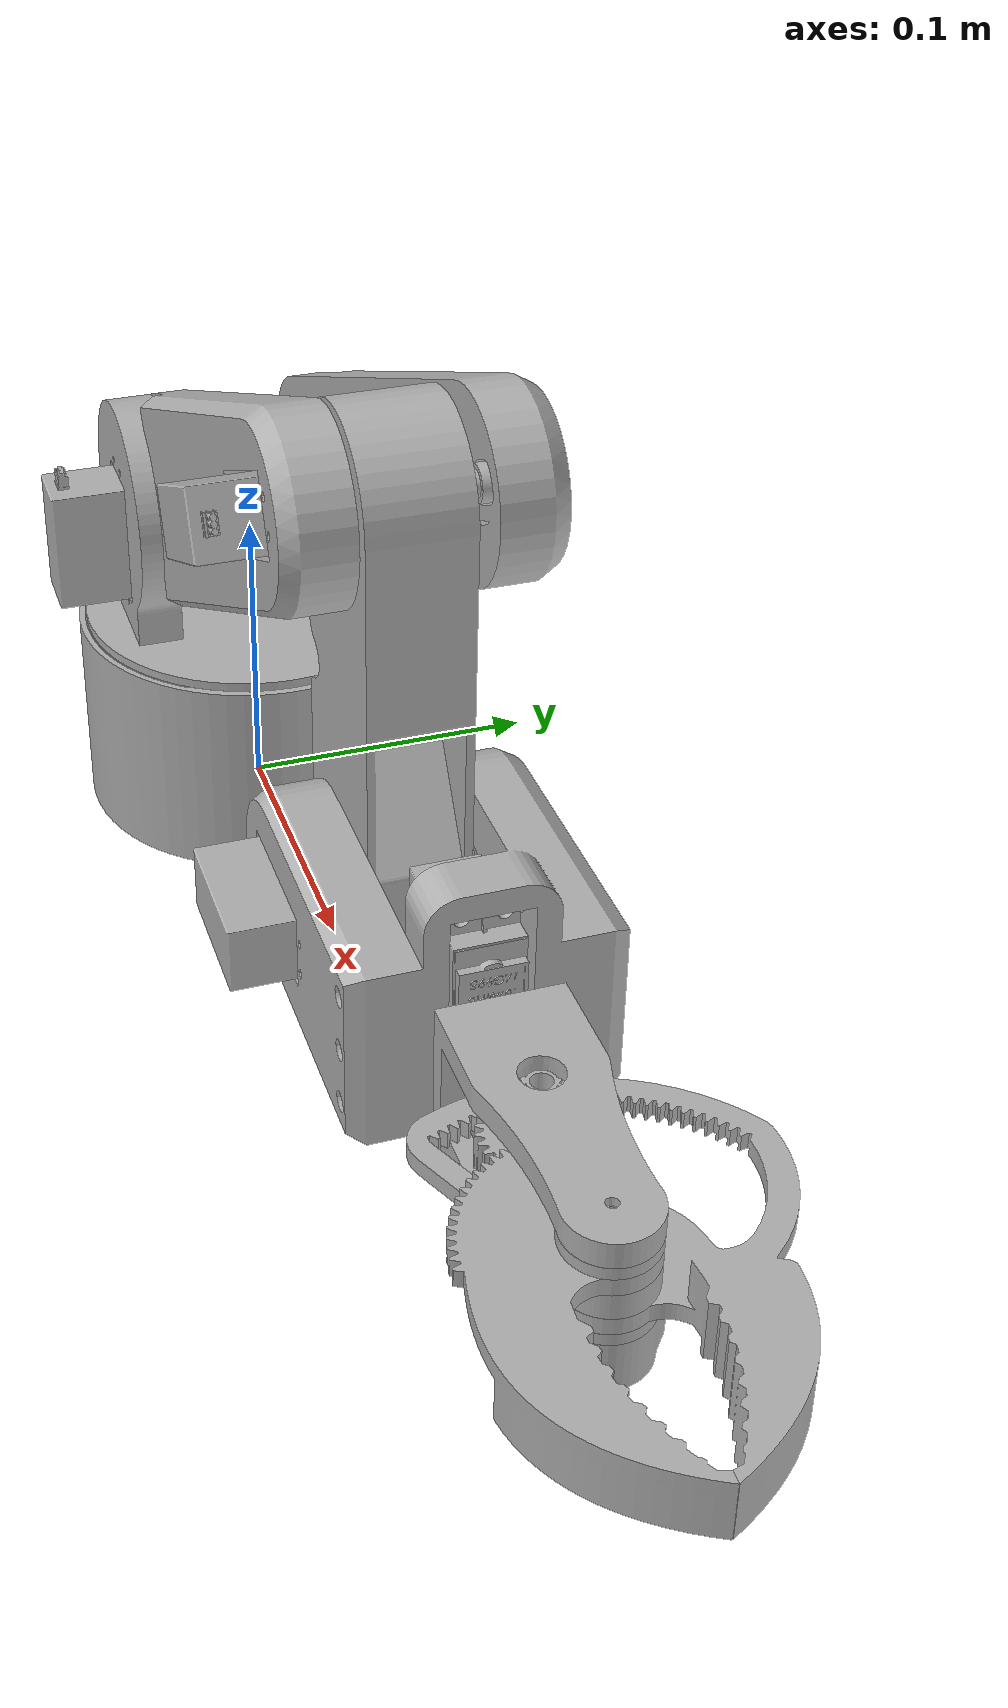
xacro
<?xml version="1.0" ?>
<robot name="braco" xmlns:xacro="http://www.ros.org/wiki/xacro">

<xacro:include filename="$(find braco_description)/urdf/materials.xacro" />
<xacro:include filename="$(find braco_description)/urdf/braco.trans" />
<xacro:include filename="$(find braco_description)/urdf/braco.gazebo" />
<link name="base_link">
  <inertial>
    <origin rpy="0 0 0" xyz="1.7530925309878173e-17 -4.54861709507948e-18 0.02187352138307566"/>
    <mass value="0.08783440670094944"/>
    <inertia ixx="0.000167" ixy="0.0" ixz="-0.0" iyy="0.000167" iyz="0.0" izz="0.000245"/>
  </inertial>
  <visual>
    <origin rpy="0 0 0" xyz="0 0 0"/>
    <geometry>
      <mesh filename="package://braco_description/meshes/base_link.stl" scale="0.001 0.001 0.001"/>
    </geometry>
    <material name="silver"/>
  </visual>
  <collision>
    <origin rpy="0 0 0" xyz="0 0 0"/>
    <geometry>
      <mesh filename="package://braco_description/meshes/base_link.stl" scale="0.001 0.001 0.001"/>
    </geometry>
  </collision>
</link>

<link name="servo_right_1">
  <inertial>
    <origin rpy="0 0 0" xyz="0.06544272704404532 -0.14216641850044148 0.07250492782702281"/>
    <mass value="0.25257832542625036"/>
    <inertia ixx="6.8e-05" ixy="-0.0" ixz="-0.0" iyy="4.4e-05" iyz="-1e-06" izz="4.1e-05"/>
  </inertial>
  <visual>
    <origin rpy="0 0 0" xyz="0.064 -0.093939 -0.032689"/>
    <geometry>
      <mesh filename="package://braco_description/meshes/servo_right_1.stl" scale="0.001 0.001 0.001"/>
    </geometry>
    <material name="silver"/>
  </visual>
  <collision>
    <origin rpy="0 0 0" xyz="0.064 -0.093939 -0.032689"/>
    <geometry>
      <mesh filename="package://braco_description/meshes/servo_right_1.stl" scale="0.001 0.001 0.001"/>
    </geometry>
  </collision>
</link>

<link name="Center_arm_v1_1">
  <inertial>
    <origin rpy="0 0 0" xyz="-0.0007068682064791942 0.009887184158139134 -0.05780205339226316"/>
    <mass value="0.24743903954578314"/>
    <inertia ixx="0.000566" ixy="0.0" ixz="-5e-06" iyy="0.000605" iyz="-0.0" izz="7.6e-05"/>
  </inertial>
  <visual>
    <origin rpy="0 0 0" xyz="-0.168543 0.011691 -0.194405"/>
    <geometry>
      <mesh filename="package://braco_description/meshes/Center_arm_v1_1.stl" scale="0.001 0.001 0.001"/>
    </geometry>
    <material name="silver"/>
  </visual>
  <collision>
    <origin rpy="0 0 0" xyz="-0.168543 0.011691 -0.194405"/>
    <geometry>
      <mesh filename="package://braco_description/meshes/Center_arm_v1_1.stl" scale="0.001 0.001 0.001"/>
    </geometry>
  </collision>
</link>

<link name="Center_arm_bearing_guide_v1_1">
  <inertial>
    <origin rpy="0 0 0" xyz="-0.008485716956284667 0.003221962356881842 0.008485254227916045"/>
    <mass value="0.0033035453927957375"/>
    <inertia ixx="0.0" ixy="-0.0" ixz="0.0" iyy="0.0" iyz="-0.0" izz="0.0"/>
  </inertial>
  <visual>
    <origin rpy="0 0 0" xyz="-0.177029 -0.008309 -0.18592"/>
    <geometry>
      <mesh filename="package://braco_description/meshes/Center_arm_bearing_guide_v1_1.stl" scale="0.001 0.001 0.001"/>
    </geometry>
    <material name="silver"/>
  </visual>
  <collision>
    <origin rpy="0 0 0" xyz="-0.177029 -0.008309 -0.18592"/>
    <geometry>
      <mesh filename="package://braco_description/meshes/Center_arm_bearing_guide_v1_1.stl" scale="0.001 0.001 0.001"/>
    </geometry>
  </collision>
</link>

<link name="Center_arm_bearing_guide_v1__1__1">
  <inertial>
    <origin rpy="0 0 0" xyz="-0.008485716956255163 0.003221962356880064 -0.008485745772046652"/>
    <mass value="0.0033035453927957375"/>
    <inertia ixx="0.0" ixy="0.0" ixz="-0.0" iyy="0.0" iyz="0.0" izz="0.0"/>
  </inertial>
  <visual>
    <origin rpy="0 0 0" xyz="-0.177029 -0.008309 -0.085391"/>
    <geometry>
      <mesh filename="package://braco_description/meshes/Center_arm_bearing_guide_v1__1__1.stl" scale="0.001 0.001 0.001"/>
    </geometry>
    <material name="silver"/>
  </visual>
  <collision>
    <origin rpy="0 0 0" xyz="-0.177029 -0.008309 -0.085391"/>
    <geometry>
      <mesh filename="package://braco_description/meshes/Center_arm_bearing_guide_v1__1__1.stl" scale="0.001 0.001 0.001"/>
    </geometry>
  </collision>
</link>

<link name="Center_arm_bearing_guide_clamp_v1_1">
  <inertial>
    <origin rpy="0 0 0" xyz="2.8304380533805684e-07 0.0016578450305459944 2.542279528283675e-07"/>
    <mass value="0.00026744770959091237"/>
    <inertia ixx="0.0" ixy="-0.0" ixz="0.0" iyy="0.0" iyz="0.0" izz="0.0"/>
  </inertial>
  <visual>
    <origin rpy="0 0 0" xyz="-0.168543 -0.021709 -0.194405"/>
    <geometry>
      <mesh filename="package://braco_description/meshes/Center_arm_bearing_guide_clamp_v1_1.stl" scale="0.001 0.001 0.001"/>
    </geometry>
    <material name="silver"/>
  </visual>
  <collision>
    <origin rpy="0 0 0" xyz="-0.168543 -0.021709 -0.194405"/>
    <geometry>
      <mesh filename="package://braco_description/meshes/Center_arm_bearing_guide_clamp_v1_1.stl" scale="0.001 0.001 0.001"/>
    </geometry>
  </collision>
</link>

<link name="ombro_1">
  <inertial>
    <origin rpy="0 0 0" xyz="0.08425500605814484 0.024406441382175036 0.039929756958307056"/>
    <mass value="0.488316525379642"/>
    <inertia ixx="0.000841" ixy="-3.4e-05" ixz="-0.000637" iyy="0.001965" iyz="-1.6e-05" izz="0.001884"/>
  </inertial>
  <visual>
    <origin rpy="0 0 0" xyz="-0.001443 0.023001 -0.11517"/>
    <geometry>
      <mesh filename="package://braco_description/meshes/ombro_1.stl" scale="0.001 0.001 0.001"/>
    </geometry>
    <material name="silver"/>
  </visual>
  <collision>
    <origin rpy="0 0 0" xyz="-0.001443 0.023001 -0.11517"/>
    <geometry>
      <mesh filename="package://braco_description/meshes/ombro_1.stl" scale="0.001 0.001 0.001"/>
    </geometry>
  </collision>
</link>

<link name="servo_elbow_1">
  <inertial>
    <origin rpy="0 0 0" xyz="0.11594994326799538 0.20794860786324101 -0.05484182605242849"/>
    <mass value="0.2525786066068201"/>
    <inertia ixx="4.6e-05" ixy="-0.0" ixz="-1.1e-05" iyy="4.4e-05" iyz="-0.0" izz="6.3e-05"/>
  </inertial>
  <visual>
    <origin rpy="0 0 0" xyz="-0.043552 0.244866 -0.245031"/>
    <geometry>
      <mesh filename="package://braco_description/meshes/servo_elbow_1.stl" scale="0.001 0.001 0.001"/>
    </geometry>
    <material name="silver"/>
  </visual>
  <collision>
    <origin rpy="0 0 0" xyz="-0.043552 0.244866 -0.245031"/>
    <geometry>
      <mesh filename="package://braco_description/meshes/servo_elbow_1.stl" scale="0.001 0.001 0.001"/>
    </geometry>
  </collision>
</link>

<link name="servo_punho_rot_1">
  <inertial>
    <origin rpy="0 0 0" xyz="0.12479196273098876 -0.10986496796742719 -0.2166544630735875"/>
    <mass value="0.25257832542625036"/>
    <inertia ixx="4.4e-05" ixy="-0.0" ixz="1e-06" iyy="6.8e-05" iyz="0.0" izz="4.1e-05"/>
  </inertial>
  <visual>
    <origin rpy="0 0 0" xyz="-0.105174 -0.110262 -0.30322"/>
    <geometry>
      <mesh filename="package://braco_description/meshes/servo_punho_rot_1.stl" scale="0.001 0.001 0.001"/>
    </geometry>
    <material name="silver"/>
  </visual>
  <collision>
    <origin rpy="0 0 0" xyz="-0.105174 -0.110262 -0.30322"/>
    <geometry>
      <mesh filename="package://braco_description/meshes/servo_punho_rot_1.stl" scale="0.001 0.001 0.001"/>
    </geometry>
  </collision>
</link>

<link name="servo_punho_xy_1">
  <inertial>
    <origin rpy="0 0 0" xyz="0.009976323814758825 -0.025226418500438767 2.8228800974527957e-07"/>
    <mass value="0.25257832542625036"/>
    <inertia ixx="4.1e-05" ixy="1e-06" ixz="0.0" iyy="4.4e-05" iyz="-0.0" izz="6.8e-05"/>
  </inertial>
  <visual>
    <origin rpy="0 0 0" xyz="-0.168543 0.011691 -0.076905"/>
    <geometry>
      <mesh filename="package://braco_description/meshes/servo_punho_xy_1.stl" scale="0.001 0.001 0.001"/>
    </geometry>
    <material name="silver"/>
  </visual>
  <collision>
    <origin rpy="0 0 0" xyz="-0.168543 0.011691 -0.076905"/>
    <geometry>
      <mesh filename="package://braco_description/meshes/servo_punho_xy_1.stl" scale="0.001 0.001 0.001"/>
    </geometry>
  </collision>
</link>

<link name="punho_1">
  <inertial>
    <origin rpy="0 0 0" xyz="-0.12859312744504028 0.10517389824420881 0.02895937574638175"/>
    <mass value="0.21880690583277723"/>
    <inertia ixx="0.000235" ixy="1.1e-05" ixz="-7e-06" iyy="0.000273" iyz="0.0" izz="0.000371"/>
  </inertial>
  <visual>
    <origin rpy="0 0 0" xyz="-0.333684 0.102528 -0.048905"/>
    <geometry>
      <mesh filename="package://braco_description/meshes/punho_1.stl" scale="0.001 0.001 0.001"/>
    </geometry>
    <material name="silver"/>
  </visual>
  <collision>
    <origin rpy="0 0 0" xyz="-0.333684 0.102528 -0.048905"/>
    <geometry>
      <mesh filename="package://braco_description/meshes/punho_1.stl" scale="0.001 0.001 0.001"/>
    </geometry>
  </collision>
</link>

<link name="Center_arm_bearing_guide_clamp_v1_punho_1">
  <inertial>
    <origin rpy="0 0 0" xyz="2.8304370869314255e-07 0.0016578450305454705 2.542280483353032e-07"/>
    <mass value="0.00026744770959091237"/>
    <inertia ixx="0.0" ixy="0.0" ixz="0.0" iyy="0.0" iyz="-0.0" izz="0.0"/>
  </inertial>
  <visual>
    <origin rpy="0 0 0" xyz="-0.168543 -0.021709 -0.076905"/>
    <geometry>
      <mesh filename="package://braco_description/meshes/Center_arm_bearing_guide_clamp_v1_punho_1.stl" scale="0.001 0.001 0.001"/>
    </geometry>
    <material name="silver"/>
  </visual>
  <collision>
    <origin rpy="0 0 0" xyz="-0.168543 -0.021709 -0.076905"/>
    <geometry>
      <mesh filename="package://braco_description/meshes/Center_arm_bearing_guide_clamp_v1_punho_1.stl" scale="0.001 0.001 0.001"/>
    </geometry>
  </collision>
</link>

<link name="Base_servo_mount_right_v1_1">
  <inertial>
    <origin rpy="0 0 0" xyz="-0.015875047506617307 -0.00020585580724299946 0.042452933406575896"/>
    <mass value="0.04710420541299451"/>
    <inertia ixx="2.1e-05" ixy="-0.0" ixz="-0.0" iyy="3.9e-05" iyz="-0.0" izz="2e-05"/>
  </inertial>
  <visual>
    <origin rpy="0 0 0" xyz="-0.01732 0.036811 -0.072"/>
    <geometry>
      <mesh filename="package://braco_description/meshes/Base_servo_mount_right_v1_1.stl" scale="0.001 0.001 0.001"/>
    </geometry>
    <material name="silver"/>
  </visual>
  <collision>
    <origin rpy="0 0 0" xyz="-0.01732 0.036811 -0.072"/>
    <geometry>
      <mesh filename="package://braco_description/meshes/Base_servo_mount_right_v1_1.stl" scale="0.001 0.001 0.001"/>
    </geometry>
  </collision>
</link>

<link name="corpo_garra_1">
  <inertial>
    <origin rpy="0 0 0" xyz="0.03690022235162099 3.972526448471712e-09 -0.004369638500211395"/>
    <mass value="0.0475742677792808"/>
    <inertia ixx="2e-05" ixy="-0.0" ixz="2e-06" iyy="5.2e-05" iyz="0.0" izz="4.3e-05"/>
  </inertial>
  <visual>
    <origin rpy="0 0 0" xyz="-0.255193 -0.000397 -0.076589"/>
    <geometry>
      <mesh filename="package://braco_description/meshes/corpo_garra_1.stl" scale="0.001 0.001 0.001"/>
    </geometry>
    <material name="silver"/>
  </visual>
  <collision>
    <origin rpy="0 0 0" xyz="-0.255193 -0.000397 -0.076589"/>
    <geometry>
      <mesh filename="package://braco_description/meshes/corpo_garra_1.stl" scale="0.001 0.001 0.001"/>
    </geometry>
  </collision>
</link>

<link name="Bearing_guide_v1_1">
  <inertial>
    <origin rpy="0 0 0" xyz="-3.612866644742141e-07 3.972064578563073e-09 0.0172504961553627"/>
    <mass value="0.0016815613439380714"/>
    <inertia ixx="0.0" ixy="0.0" ixz="0.0" iyy="0.0" iyz="-0.0" izz="0.0"/>
  </inertial>
  <visual>
    <origin rpy="0 0 0" xyz="-0.329943 -0.000397 -0.059339"/>
    <geometry>
      <mesh filename="package://braco_description/meshes/Bearing_guide_v1_1.stl" scale="0.001 0.001 0.001"/>
    </geometry>
    <material name="silver"/>
  </visual>
  <collision>
    <origin rpy="0 0 0" xyz="-0.329943 -0.000397 -0.059339"/>
    <geometry>
      <mesh filename="package://braco_description/meshes/Bearing_guide_v1_1.stl" scale="0.001 0.001 0.001"/>
    </geometry>
  </collision>
</link>

<link name="Bearing_top-bottom_bushing_v1_1">
  <inertial>
    <origin rpy="0 0 0" xyz="-3.6128666475176985e-07 3.972463791398172e-09 -0.00174950384463754"/>
    <mass value="0.0016106179771745465"/>
    <inertia ixx="0.0" ixy="-0.0" ixz="0.0" iyy="0.0" iyz="0.0" izz="0.0"/>
  </inertial>
  <visual>
    <origin rpy="0 0 0" xyz="-0.329943 -0.000397 -0.088839"/>
    <geometry>
      <mesh filename="package://braco_description/meshes/Bearing_top-bottom_bushing_v1_1.stl" scale="0.001 0.001 0.001"/>
    </geometry>
    <material name="silver"/>
  </visual>
  <collision>
    <origin rpy="0 0 0" xyz="-0.329943 -0.000397 -0.088839"/>
    <geometry>
      <mesh filename="package://braco_description/meshes/Bearing_top-bottom_bushing_v1_1.stl" scale="0.001 0.001 0.001"/>
    </geometry>
  </collision>
</link>

<link name="Bearing_top-bottom_bushing_v1__1__1">
  <inertial>
    <origin rpy="0 0 0" xyz="-3.6128666464074755e-07 3.9724636844958375e-09 0.0017504961553625048"/>
    <mass value="0.0016106179771745465"/>
    <inertia ixx="0.0" ixy="-0.0" ixz="-0.0" iyy="0.0" iyz="0.0" izz="0.0"/>
  </inertial>
  <visual>
    <origin rpy="0 0 0" xyz="-0.329943 -0.000397 -0.064339"/>
    <geometry>
      <mesh filename="package://braco_description/meshes/Bearing_top-bottom_bushing_v1__1__1.stl" scale="0.001 0.001 0.001"/>
    </geometry>
    <material name="silver"/>
  </visual>
  <collision>
    <origin rpy="0 0 0" xyz="-0.329943 -0.000397 -0.064339"/>
    <geometry>
      <mesh filename="package://braco_description/meshes/Bearing_top-bottom_bushing_v1__1__1.stl" scale="0.001 0.001 0.001"/>
    </geometry>
  </collision>
</link>

<link name="Bearing_center_bushing_v1_1">
  <inertial>
    <origin rpy="0 0 0" xyz="0.08272163871333552 0.03771400397246374 0.1175364961553626"/>
    <mass value="0.0034513242368025996"/>
    <inertia ixx="0.0" ixy="0.0" ixz="0.0" iyy="0.0" iyz="0.0" izz="0.0"/>
  </inertial>
  <visual>
    <origin rpy="0 0 0" xyz="-0.247221 0.037317 0.040947"/>
    <geometry>
      <mesh filename="package://braco_description/meshes/Bearing_center_bushing_v1_1.stl" scale="0.001 0.001 0.001"/>
    </geometry>
    <material name="silver"/>
  </visual>
  <collision>
    <origin rpy="0 0 0" xyz="-0.247221 0.037317 0.040947"/>
    <geometry>
      <mesh filename="package://braco_description/meshes/Bearing_center_bushing_v1_1.stl" scale="0.001 0.001 0.001"/>
    </geometry>
  </collision>
</link>

<link name="servo_garra_1">
  <inertial>
    <origin rpy="0 0 0" xyz="0.037777710886314486 -0.022783770578142893 0.08636982017301603"/>
    <mass value="0.25257832542625036"/>
    <inertia ixx="4.1e-05" ixy="-0.0" ixz="1e-06" iyy="6.8e-05" iyz="0.0" izz="4.4e-05"/>
  </inertial>
  <visual>
    <origin rpy="0 0 0" xyz="-0.257221 -0.023183 0.040947"/>
    <geometry>
      <mesh filename="package://braco_description/meshes/servo_garra_1.stl" scale="0.001 0.001 0.001"/>
    </geometry>
    <material name="silver"/>
  </visual>
  <collision>
    <origin rpy="0 0 0" xyz="-0.257221 -0.023183 0.040947"/>
    <geometry>
      <mesh filename="package://braco_description/meshes/servo_garra_1.stl" scale="0.001 0.001 0.001"/>
    </geometry>
  </collision>
</link>

<link name="Gripper_120T_v1_1">
  <inertial>
    <origin rpy="0 0 0" xyz="0.010502021200330447 0.01817352441983682 0.006028973064765769"/>
    <mass value="0.031315152970389164"/>
    <inertia ixx="1e-05" ixy="-4e-06" ixz="-3e-06" iyy="4e-05" iyz="-0.0" izz="4.8e-05"/>
  </inertial>
  <visual>
    <origin rpy="0 0 0" xyz="-0.329943 -0.000397 -0.067839"/>
    <geometry>
      <mesh filename="package://braco_description/meshes/Gripper_120T_v1_1.stl" scale="0.001 0.001 0.001"/>
    </geometry>
    <material name="silver"/>
  </visual>
  <collision>
    <origin rpy="0 0 0" xyz="-0.329943 -0.000397 -0.067839"/>
    <geometry>
      <mesh filename="package://braco_description/meshes/Gripper_120T_v1_1.stl" scale="0.001 0.001 0.001"/>
    </geometry>
  </collision>
</link>

<link name="Gripper_72T_v1_1">
  <inertial>
    <origin rpy="0 0 0" xyz="0.020483598648375678 -0.01768686032720037 -0.0012211351915923235"/>
    <mass value="0.0250024753894087"/>
    <inertia ixx="4e-06" ixy="2e-06" ixz="2e-06" iyy="2e-05" iyz="-0.0" izz="2.2e-05"/>
  </inertial>
  <visual>
    <origin rpy="0 0 0" xyz="-0.329943 -0.000397 -0.080339"/>
    <geometry>
      <mesh filename="package://braco_description/meshes/Gripper_72T_v1_1.stl" scale="0.001 0.001 0.001"/>
    </geometry>
    <material name="silver"/>
  </visual>
  <collision>
    <origin rpy="0 0 0" xyz="-0.329943 -0.000397 -0.080339"/>
    <geometry>
      <mesh filename="package://braco_description/meshes/Gripper_72T_v1_1.stl" scale="0.001 0.001 0.001"/>
    </geometry>
  </collision>
</link>

<link name="Servo_gear_v1_1">
  <inertial>
    <origin rpy="0 0 0" xyz="-3.2988473608330793e-07 2.574818630455395e-07 0.004318374627694327"/>
    <mass value="0.010154744217590462"/>
    <inertia ixx="1e-06" ixy="-0.0" ixz="0.0" iyy="1e-06" iyz="0.0" izz="1e-06"/>
  </inertial>
  <visual>
    <origin rpy="0 0 0" xyz="-0.285023 -0.000399 -0.070649"/>
    <geometry>
      <mesh filename="package://braco_description/meshes/Servo_gear_v1_1.stl" scale="0.001 0.001 0.001"/>
    </geometry>
    <material name="silver"/>
  </visual>
  <collision>
    <origin rpy="0 0 0" xyz="-0.285023 -0.000399 -0.070649"/>
    <geometry>
      <mesh filename="package://braco_description/meshes/Servo_gear_v1_1.stl" scale="0.001 0.001 0.001"/>
    </geometry>
  </collision>
</link>

<link name="tampa_1">
  <inertial>
    <origin rpy="0 0 0" xyz="-6.093836564699504e-06 -1.681177278100045e-06 0.0661167042349627"/>
    <mass value="0.0342597144271648"/>
    <inertia ixx="2.9e-05" ixy="0.0" ixz="0.0" iyy="2.9e-05" iyz="0.0" izz="5.4e-05"/>
  </inertial>
  <visual>
    <origin rpy="0 0 0" xyz="-0.0 -0.0 -0.003"/>
    <geometry>
      <mesh filename="package://braco_description/meshes/tampa_1.stl" scale="0.001 0.001 0.001"/>
    </geometry>
    <material name="silver"/>
  </visual>
  <collision>
    <origin rpy="0 0 0" xyz="-0.0 -0.0 -0.003"/>
    <geometry>
      <mesh filename="package://braco_description/meshes/tampa_1.stl" scale="0.001 0.001 0.001"/>
    </geometry>
  </collision>
</link>

<joint name="Rigid37" type="fixed">
  <origin rpy="0 0 0" xyz="-0.08132 0.13075 -0.039311"/>
  <parent link="Base_servo_mount_right_v1_1"/>
  <child link="servo_right_1"/>
</joint>

<joint name="Rev52" type="continuous">
  <origin rpy="0 0 0" xyz="0.124991 0.233175 -0.050626"/>
  <parent link="servo_elbow_1"/>
  <child link="Center_arm_v1_1"/>
  <axis xyz="0.0 1.0 -0.0"/>
</joint>

<joint name="Rigid54" type="fixed">
  <origin rpy="0 0 0" xyz="0.008486 0.02 -0.008485"/>
  <parent link="Center_arm_v1_1"/>
  <child link="Center_arm_bearing_guide_v1_1"/>
</joint>

<joint name="Rigid56" type="fixed">
  <origin rpy="0 0 0" xyz="0.008486 0.02 -0.109014"/>
  <parent link="Center_arm_v1_1"/>
  <child link="Center_arm_bearing_guide_v1__1__1"/>
</joint>

<joint name="Rigid58" type="fixed">
  <origin rpy="0 0 0" xyz="-0.008486 0.0134 0.008485"/>
  <parent link="Center_arm_bearing_guide_v1_1"/>
  <child link="Center_arm_bearing_guide_clamp_v1_1"/>
</joint>

<joint name="Rev63" type="continuous">
  <origin rpy="0 0 0" xyz="0.065443 -0.11694 0.082481"/>
  <parent link="servo_right_1"/>
  <child link="ombro_1"/>
  <axis xyz="0.0 1.0 0.0"/>
</joint>

<joint name="Rigid65" type="fixed">
  <origin rpy="0 0 0" xyz="0.042109 -0.221865 0.129861"/>
  <parent link="ombro_1"/>
  <child link="servo_elbow_1"/>
</joint>

<joint name="Rigid70" type="fixed">
  <origin rpy="0 0 0" xyz="-0.22851 0.21279 0.254315"/>
  <parent link="punho_1"/>
  <child link="servo_punho_rot_1"/>
</joint>

<joint name="Rev71" type="continuous">
  <origin rpy="0 0 0" xyz="0.0 0.0 -0.1175"/>
  <parent link="Center_arm_v1_1"/>
  <child link="servo_punho_xy_1"/>
  <axis xyz="-0.0 -1.0 0.0"/>
</joint>

<joint name="Rigid72" type="fixed">
  <origin rpy="0 0 0" xyz="0.165141 -0.090837 -0.028"/>
  <parent link="servo_punho_xy_1"/>
  <child link="punho_1"/>
</joint>

<joint name="Rigid74" type="fixed">
  <origin rpy="0 0 0" xyz="-0.008486 0.0134 -0.008486"/>
  <parent link="Center_arm_bearing_guide_v1__1__1"/>
  <child link="Center_arm_bearing_guide_clamp_v1_punho_1"/>
</joint>

<joint name="Rigid78" type="fixed">
  <origin rpy="0 0 0" xyz="0.01732 -0.036811 0.069"/>
  <parent link="tampa_1"/>
  <child link="Base_servo_mount_right_v1_1"/>
</joint>

<joint name="Rev81" type="continuous">
  <origin rpy="0 0 0" xyz="0.150019 -0.109865 -0.226631"/>
  <parent link="servo_punho_rot_1"/>
  <child link="corpo_garra_1"/>
  <axis xyz="1.0 0.0 0.0"/>
</joint>

<joint name="Rigid82" type="fixed">
  <origin rpy="0 0 0" xyz="0.07475 0.0 -0.01725"/>
  <parent link="corpo_garra_1"/>
  <child link="Bearing_guide_v1_1"/>
</joint>

<joint name="Rigid83" type="fixed">
  <origin rpy="0 0 0" xyz="0.07475 0.0 0.01225"/>
  <parent link="corpo_garra_1"/>
  <child link="Bearing_top-bottom_bushing_v1_1"/>
</joint>

<joint name="Rigid84" type="fixed">
  <origin rpy="0 0 0" xyz="0.07475 0.0 -0.01225"/>
  <parent link="corpo_garra_1"/>
  <child link="Bearing_top-bottom_bushing_v1__1__1"/>
</joint>

<joint name="Rigid85" type="fixed">
  <origin rpy="0 0 0" xyz="-0.007972 -0.037714 -0.117536"/>
  <parent link="corpo_garra_1"/>
  <child link="Bearing_center_bushing_v1_1"/>
</joint>

<joint name="Rigid86" type="fixed">
  <origin rpy="0 0 0" xyz="0.002028 0.022786 -0.117536"/>
  <parent link="corpo_garra_1"/>
  <child link="servo_garra_1"/>
</joint>

<joint name="Rev87" type="revolute">
  <origin rpy="0 0 0" xyz="0.0 0.0 0.0035"/>
  <parent link="Bearing_top-bottom_bushing_v1__1__1"/>
  <child link="Gripper_120T_v1_1"/>
  <axis xyz="-0.0 0.0 1.0"/>
  <limit effort="100" lower="0.0" upper="0.785398" velocity="100"/>
</joint>

<joint name="Rev88" type="revolute">
  <origin rpy="0 0 0" xyz="0.082722 0.037714 0.121286"/>
  <parent link="Bearing_center_bushing_v1_1"/>
  <child link="Gripper_72T_v1_1"/>
  <axis xyz="-0.0 0.0 1.0"/>
  <limit effort="100" lower="-0.785398" upper="0.0" velocity="100"/>
</joint>

<joint name="Rev89" type="continuous">
  <origin rpy="0 0 0" xyz="0.027802 -0.022784 0.111596"/>
  <parent link="servo_garra_1"/>
  <child link="Servo_gear_v1_1"/>
  <axis xyz="-0.0 0.0 1.0"/>
</joint>

<joint name="Rev92" type="continuous">
  <origin rpy="0 0 0" xyz="0.0 0.0 0.003"/>
  <parent link="base_link"/>
  <child link="tampa_1"/>
  <axis xyz="-0.0 0.0 1.0"/>
</joint>

</robot>

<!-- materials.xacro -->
<robot name="braco" xmlns:xacro="http://www.ros.org/wiki/xacro" >

<material name="silver">
  <color rgba="0.700 0.700 0.700 1.000"/>
</material>

</robot>

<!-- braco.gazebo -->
<robot name="braco" xmlns:xacro="http://www.ros.org/wiki/xacro" >

<xacro:property name="body_color" value="Gazebo/Silver" />

<gazebo>
  <plugin filename="libgazebo_ros_control.so" name="control"/>
</gazebo>
<gazebo reference="base_link">
  <material>${body_color}</material>
  <mu1>0.2</mu1>
  <mu2>0.2</mu2>
  <selfCollide>true</selfCollide>
  <gravity>true</gravity>
</gazebo>

<gazebo reference="servo_right_1">
  <material>${body_color}</material>
  <mu1>0.2</mu1>
  <mu2>0.2</mu2>
  <selfCollide>true</selfCollide>
</gazebo>

<gazebo reference="Center_arm_v1_1">
  <material>${body_color}</material>
  <mu1>0.2</mu1>
  <mu2>0.2</mu2>
  <selfCollide>true</selfCollide>
</gazebo>

<gazebo reference="Center_arm_bearing_guide_v1_1">
  <material>${body_color}</material>
  <mu1>0.2</mu1>
  <mu2>0.2</mu2>
  <selfCollide>true</selfCollide>
</gazebo>

<gazebo reference="Center_arm_bearing_guide_v1__1__1">
  <material>${body_color}</material>
  <mu1>0.2</mu1>
  <mu2>0.2</mu2>
  <selfCollide>true</selfCollide>
</gazebo>

<gazebo reference="Center_arm_bearing_guide_clamp_v1_1">
  <material>${body_color}</material>
  <mu1>0.2</mu1>
  <mu2>0.2</mu2>
  <selfCollide>true</selfCollide>
</gazebo>

<gazebo reference="ombro_1">
  <material>${body_color}</material>
  <mu1>0.2</mu1>
  <mu2>0.2</mu2>
  <selfCollide>true</selfCollide>
</gazebo>

<gazebo reference="servo_elbow_1">
  <material>${body_color}</material>
  <mu1>0.2</mu1>
  <mu2>0.2</mu2>
  <selfCollide>true</selfCollide>
</gazebo>

<gazebo reference="servo_punho_rot_1">
  <material>${body_color}</material>
  <mu1>0.2</mu1>
  <mu2>0.2</mu2>
  <selfCollide>true</selfCollide>
</gazebo>

<gazebo reference="servo_punho_xy_1">
  <material>${body_color}</material>
  <mu1>0.2</mu1>
  <mu2>0.2</mu2>
  <selfCollide>true</selfCollide>
</gazebo>

<gazebo reference="punho_1">
  <material>${body_color}</material>
  <mu1>0.2</mu1>
  <mu2>0.2</mu2>
  <selfCollide>true</selfCollide>
</gazebo>

<gazebo reference="Center_arm_bearing_guide_clamp_v1_punho_1">
  <material>${body_color}</material>
  <mu1>0.2</mu1>
  <mu2>0.2</mu2>
  <selfCollide>true</selfCollide>
</gazebo>

<gazebo reference="Base_servo_mount_right_v1_1">
  <material>${body_color}</material>
  <mu1>0.2</mu1>
  <mu2>0.2</mu2>
  <selfCollide>true</selfCollide>
</gazebo>

<gazebo reference="corpo_garra_1">
  <material>${body_color}</material>
  <mu1>0.2</mu1>
  <mu2>0.2</mu2>
  <selfCollide>true</selfCollide>
</gazebo>

<gazebo reference="Bearing_guide_v1_1">
  <material>${body_color}</material>
  <mu1>0.2</mu1>
  <mu2>0.2</mu2>
  <selfCollide>true</selfCollide>
</gazebo>

<gazebo reference="Bearing_top-bottom_bushing_v1_1">
  <material>${body_color}</material>
  <mu1>0.2</mu1>
  <mu2>0.2</mu2>
  <selfCollide>true</selfCollide>
</gazebo>

<gazebo reference="Bearing_top-bottom_bushing_v1__1__1">
  <material>${body_color}</material>
  <mu1>0.2</mu1>
  <mu2>0.2</mu2>
  <selfCollide>true</selfCollide>
</gazebo>

<gazebo reference="Bearing_center_bushing_v1_1">
  <material>${body_color}</material>
  <mu1>0.2</mu1>
  <mu2>0.2</mu2>
  <selfCollide>true</selfCollide>
</gazebo>

<gazebo reference="servo_garra_1">
  <material>${body_color}</material>
  <mu1>0.2</mu1>
  <mu2>0.2</mu2>
  <selfCollide>true</selfCollide>
</gazebo>

<gazebo reference="Gripper_120T_v1_1">
  <material>${body_color}</material>
  <mu1>0.2</mu1>
  <mu2>0.2</mu2>
  <selfCollide>true</selfCollide>
</gazebo>

<gazebo reference="Gripper_72T_v1_1">
  <material>${body_color}</material>
  <mu1>0.2</mu1>
  <mu2>0.2</mu2>
  <selfCollide>true</selfCollide>
</gazebo>

<gazebo reference="Servo_gear_v1_1">
  <material>${body_color}</material>
  <mu1>0.2</mu1>
  <mu2>0.2</mu2>
  <selfCollide>true</selfCollide>
</gazebo>

<gazebo reference="tampa_1">
  <material>${body_color}</material>
  <mu1>0.2</mu1>
  <mu2>0.2</mu2>
  <selfCollide>true</selfCollide>
</gazebo>

</robot>
